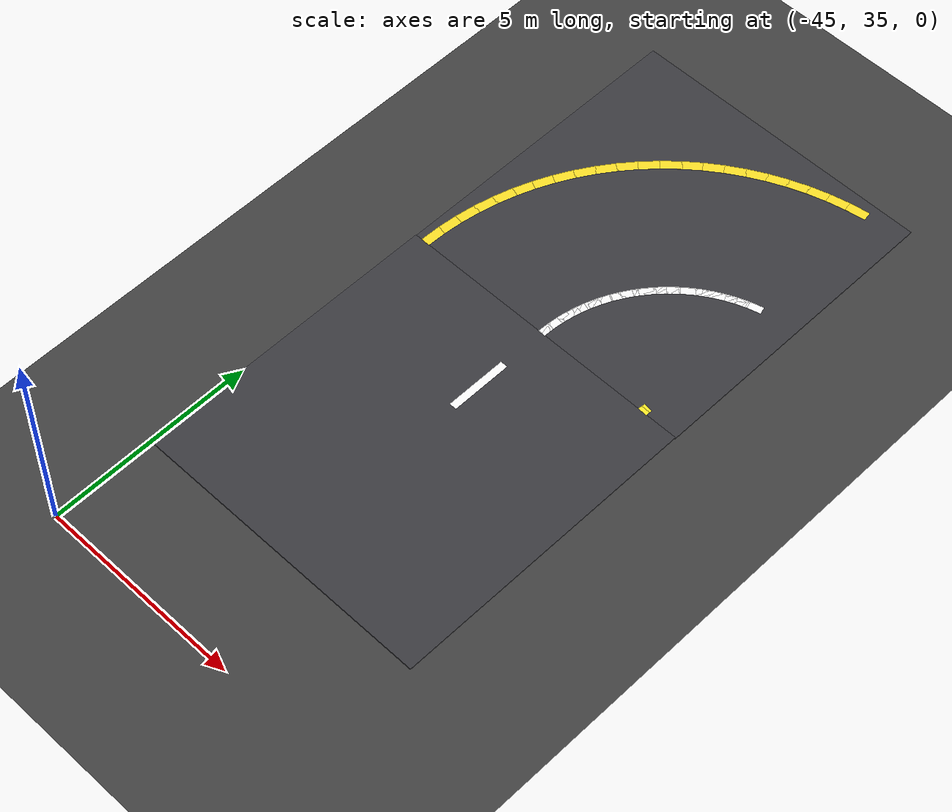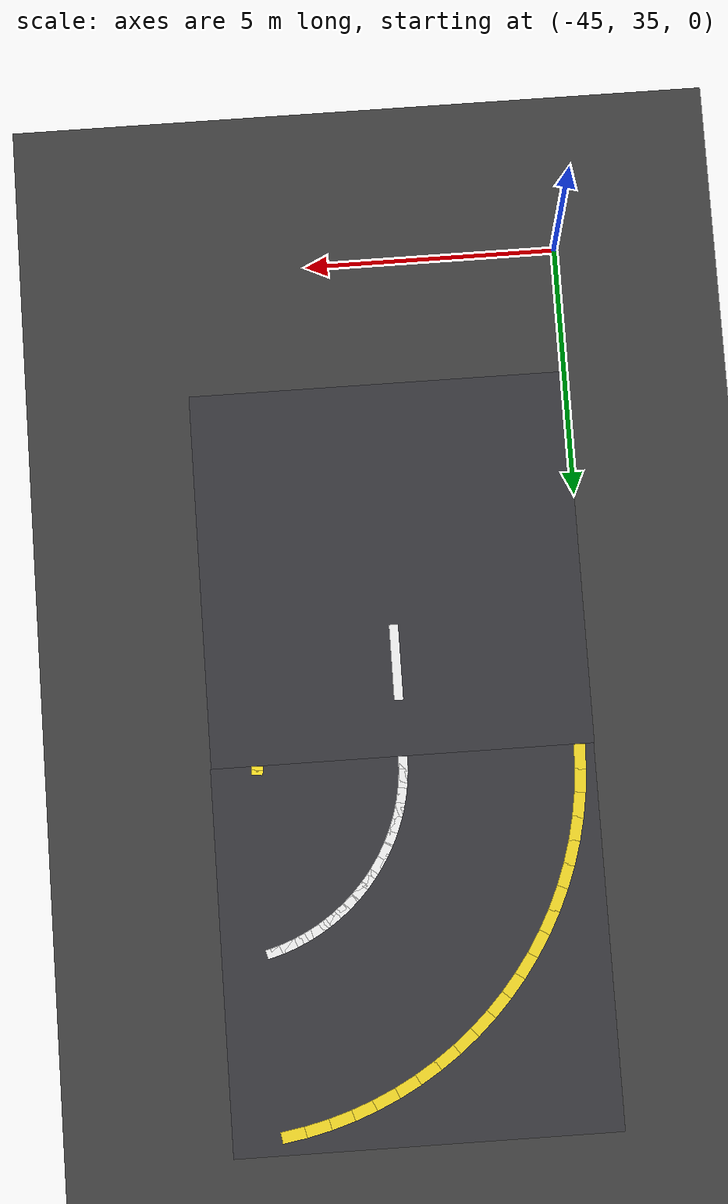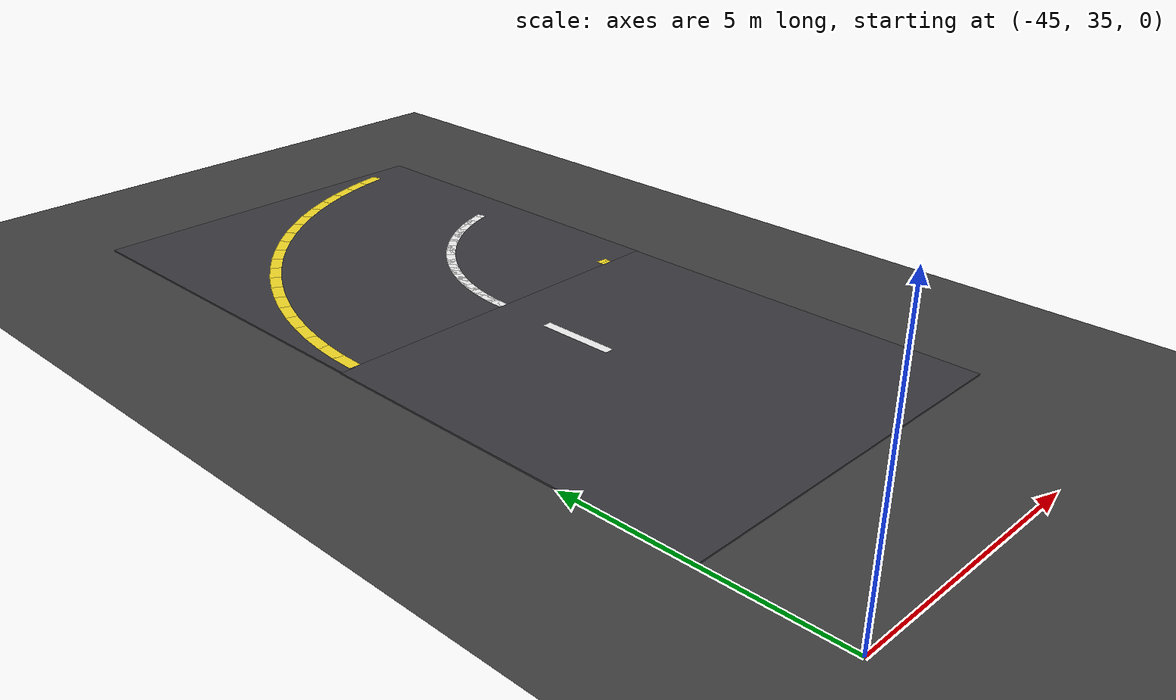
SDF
<sdf version="1.7">
 <world name="compact_city">
  <model name="ground_plane">
   <static>1</static>
   <pose>0 0 0.01 0 -0 0</pose>
   <link name="link">
    <collision name="collision">
     <geometry><plane><normal>0 0 1</normal><size>200 200</size></plane></geometry>
    </collision>
    <visual name="visual">
     <geometry><plane><normal>0 0 1</normal><size>200 200</size></plane></geometry>
     <material>
      <ambient>0.2 0.2 0.2 1</ambient>
      <diffuse>0.25 0.25 0.25 1</diffuse>
      <specular>0.1 0.1 0.1 1</specular>
     </material>
    </visual>
   </link>
  </model>
  <model name="road_tile_1">
   <static>1</static>
   <pose>-41.2353 48.726 0.015 0 -0 0</pose>
   <link name="link">
    <collision name="collision"><geometry><box><size>7.5 7.5 0.03</size></box></geometry></collision>
    <visual name="visual">
     <geometry><box><size>7.5 7.5 0.03</size></box></geometry>
     <material>
      <ambient>0.18 0.18 0.2 1</ambient>
      <diffuse>0.22 0.22 0.24 1</diffuse>
      <specular>0.1 0.1 0.1 1</specular>
     </material>
    </visual>
   </link>
  </model>
  <model name="road_tile_13">
   <static>1</static>
   <pose>-41.25 41.25 0.015 0 -0 1.5708</pose>
   <link name="link">
    <collision name="collision"><geometry><box><size>7.5 7.5 0.03</size></box></geometry></collision>
    <visual name="visual">
     <geometry><box><size>7.5 7.5 0.03</size></box></geometry>
     <material>
      <ambient>0.18 0.18 0.2 1</ambient>
      <diffuse>0.22 0.22 0.24 1</diffuse>
      <specular>0.1 0.1 0.1 1</specular>
     </material>
    </visual>
   </link>
  </model>
  <model name="ld_16">
   <static>1</static>
   <pose>-41.25 43.125 0.038 0 -0 1.5708</pose>
   <link name="link">
    <visual name="v">
     <geometry><box><size>1.5 0.18 0.002</size></box></geometry>
     <material><ambient>1 1 1 1</ambient><diffuse>0.95 0.95 0.95 1</diffuse></material>
    </visual>
   </link>
  </model>
  <model name="ac_358">
   <static>1</static>
   <pose>-38.5885 48.5886 0.038 0 0 -2.84708</pose>
   <link name="link">
    <visual name="v">
     <geometry><box><size>0.260117 0.18 0.002</size></box></geometry>
     <material><ambient>1 1 1 1</ambient><diffuse>0.95 0.95 0.95 1</diffuse></material>
    </visual>
   </link>
  </model>
  <model name="ac_359">
   <static>1</static>
   <pose>-38.8209 48.5097 0.038 0 0 -2.78159</pose>
   <link name="link">
    <visual name="v">
     <geometry><box><size>0.260117 0.18 0.002</size></box></geometry>
     <material><ambient>1 1 1 1</ambient><diffuse>0.95 0.95 0.95 1</diffuse></material>
    </visual>
   </link>
  </model>
  <model name="ac_360">
   <static>1</static>
   <pose>-39.0477 48.4158 0.038 0 0 -2.71618</pose>
   <link name="link">
    <visual name="v">
     <geometry><box><size>0.260117 0.18 0.002</size></box></geometry>
     <material><ambient>1 1 1 1</ambient><diffuse>0.95 0.95 0.95 1</diffuse></material>
    </visual>
   </link>
  </model>
  <model name="ac_361">
   <static>1</static>
   <pose>-39.2677 48.3072 0.038 0 0 -2.65069</pose>
   <link name="link">
    <visual name="v">
     <geometry><box><size>0.260117 0.18 0.002</size></box></geometry>
     <material><ambient>1 1 1 1</ambient><diffuse>0.95 0.95 0.95 1</diffuse></material>
    </visual>
   </link>
  </model>
  <model name="ac_362">
   <static>1</static>
   <pose>-39.4803 48.1845 0.038 0 0 -2.58528</pose>
   <link name="link">
    <visual name="v">
     <geometry><box><size>0.260117 0.18 0.002</size></box></geometry>
     <material><ambient>1 1 1 1</ambient><diffuse>0.95 0.95 0.95 1</diffuse></material>
    </visual>
   </link>
  </model>
  <model name="ac_363">
   <static>1</static>
   <pose>-39.6843 48.0481 0.038 0 0 -2.51979</pose>
   <link name="link">
    <visual name="v">
     <geometry><box><size>0.260117 0.18 0.002</size></box></geometry>
     <material><ambient>1 1 1 1</ambient><diffuse>0.95 0.95 0.95 1</diffuse></material>
    </visual>
   </link>
  </model>
  <model name="ac_364">
   <static>1</static>
   <pose>-39.879 47.8987 0.038 0 0 -2.45438</pose>
   <link name="link">
    <visual name="v">
     <geometry><box><size>0.260117 0.18 0.002</size></box></geometry>
     <material><ambient>1 1 1 1</ambient><diffuse>0.95 0.95 0.95 1</diffuse></material>
    </visual>
   </link>
  </model>
  <model name="ac_365">
   <static>1</static>
   <pose>-40.0635 47.7371 0.038 0 0 -2.38889</pose>
   <link name="link">
    <visual name="v">
     <geometry><box><size>0.260117 0.18 0.002</size></box></geometry>
     <material><ambient>1 1 1 1</ambient><diffuse>0.95 0.95 0.95 1</diffuse></material>
    </visual>
   </link>
  </model>
  <model name="ac_366">
   <static>1</static>
   <pose>-40.2371 47.5635 0.038 0 0 -2.32348</pose>
   <link name="link">
    <visual name="v">
     <geometry><box><size>0.260117 0.18 0.002</size></box></geometry>
     <material><ambient>1 1 1 1</ambient><diffuse>0.95 0.95 0.95 1</diffuse></material>
    </visual>
   </link>
  </model>
  <model name="ac_367">
   <static>1</static>
   <pose>-40.3987 47.379 0.038 0 0 -2.25799</pose>
   <link name="link">
    <visual name="v">
     <geometry><box><size>0.260117 0.18 0.002</size></box></geometry>
     <material><ambient>1 1 1 1</ambient><diffuse>0.95 0.95 0.95 1</diffuse></material>
    </visual>
   </link>
  </model>
  <model name="ac_368">
   <static>1</static>
   <pose>-40.5481 47.1843 0.038 0 0 -2.19258</pose>
   <link name="link">
    <visual name="v">
     <geometry><box><size>0.260117 0.18 0.002</size></box></geometry>
     <material><ambient>1 1 1 1</ambient><diffuse>0.95 0.95 0.95 1</diffuse></material>
    </visual>
   </link>
  </model>
  <model name="ac_369">
   <static>1</static>
   <pose>-40.6845 46.9803 0.038 0 0 -2.12709</pose>
   <link name="link">
    <visual name="v">
     <geometry><box><size>0.260117 0.18 0.002</size></box></geometry>
     <material><ambient>1 1 1 1</ambient><diffuse>0.95 0.95 0.95 1</diffuse></material>
    </visual>
   </link>
  </model>
  <model name="ac_370">
   <static>1</static>
   <pose>-40.8072 46.7677 0.038 0 0 -2.06169</pose>
   <link name="link">
    <visual name="v">
     <geometry><box><size>0.260117 0.18 0.002</size></box></geometry>
     <material><ambient>1 1 1 1</ambient><diffuse>0.95 0.95 0.95 1</diffuse></material>
    </visual>
   </link>
  </model>
  <model name="ac_371">
   <static>1</static>
   <pose>-40.9158 46.5477 0.038 0 0 -1.99619</pose>
   <link name="link">
    <visual name="v">
     <geometry><box><size>0.260117 0.18 0.002</size></box></geometry>
     <material><ambient>1 1 1 1</ambient><diffuse>0.95 0.95 0.95 1</diffuse></material>
    </visual>
   </link>
  </model>
  <model name="ac_372">
   <static>1</static>
   <pose>-41.0097 46.3209 0.038 0 0 -1.93078</pose>
   <link name="link">
    <visual name="v">
     <geometry><box><size>0.260117 0.18 0.002</size></box></geometry>
     <material><ambient>1 1 1 1</ambient><diffuse>0.95 0.95 0.95 1</diffuse></material>
    </visual>
   </link>
  </model>
  <model name="ac_373">
   <static>1</static>
   <pose>-41.0886 46.0885 0.038 0 0 -1.86529</pose>
   <link name="link">
    <visual name="v">
     <geometry><box><size>0.260117 0.18 0.002</size></box></geometry>
     <material><ambient>1 1 1 1</ambient><diffuse>0.95 0.95 0.95 1</diffuse></material>
    </visual>
   </link>
  </model>
  <model name="ac_374">
   <static>1</static>
   <pose>-41.1521 45.8516 0.038 0 0 -1.79988</pose>
   <link name="link">
    <visual name="v">
     <geometry><box><size>0.260117 0.18 0.002</size></box></geometry>
     <material><ambient>1 1 1 1</ambient><diffuse>0.95 0.95 0.95 1</diffuse></material>
    </visual>
   </link>
  </model>
  <model name="ac_375">
   <static>1</static>
   <pose>-41.1999 45.6108 0.038 0 0 -1.73439</pose>
   <link name="link">
    <visual name="v">
     <geometry><box><size>0.260117 0.18 0.002</size></box></geometry>
     <material><ambient>1 1 1 1</ambient><diffuse>0.95 0.95 0.95 1</diffuse></material>
    </visual>
   </link>
  </model>
  <model name="ac_376">
   <static>1</static>
   <pose>-41.232 45.3675 0.038 0 0 -1.66898</pose>
   <link name="link">
    <visual name="v">
     <geometry><box><size>0.260117 0.18 0.002</size></box></geometry>
     <material><ambient>1 1 1 1</ambient><diffuse>0.95 0.95 0.95 1</diffuse></material>
    </visual>
   </link>
  </model>
  <model name="ac_377">
   <static>1</static>
   <pose>-41.248 45.1227 0.038 0 0 -1.60349</pose>
   <link name="link">
    <visual name="v">
     <geometry><box><size>0.260117 0.18 0.002</size></box></geometry>
     <material><ambient>1 1 1 1</ambient><diffuse>0.95 0.95 0.95 1</diffuse></material>
    </visual>
   </link>
  </model>
  <model name="ao_404">
   <static>1</static>
   <pose>-38.6728 52.1039 0.038 0 0 -2.97798</pose>
   <link name="link">
    <visual name="v">
     <geometry><box><size>0.494712 0.225 0.002</size></box></geometry>
     <material><ambient>0.9 0.8 0.1 1</ambient><diffuse>0.95 0.85 0.15 1</diffuse></material>
    </visual>
   </link>
  </model>
  <model name="ao_405">
   <static>1</static>
   <pose>-39.135 52.0119 0.038 0 0 -2.91249</pose>
   <link name="link">
    <visual name="v">
     <geometry><box><size>0.494712 0.225 0.002</size></box></geometry>
     <material><ambient>0.9 0.8 0.1 1</ambient><diffuse>0.95 0.85 0.15 1</diffuse></material>
    </visual>
   </link>
  </model>
  <model name="ao_406">
   <static>1</static>
   <pose>-39.5901 51.8899 0.038 0 0 -2.84708</pose>
   <link name="link">
    <visual name="v">
     <geometry><box><size>0.494712 0.225 0.002</size></box></geometry>
     <material><ambient>0.9 0.8 0.1 1</ambient><diffuse>0.95 0.85 0.15 1</diffuse></material>
    </visual>
   </link>
  </model>
  <model name="ao_407">
   <static>1</static>
   <pose>-40.0362 51.7385 0.038 0 0 -2.78159</pose>
   <link name="link">
    <visual name="v">
     <geometry><box><size>0.494712 0.225 0.002</size></box></geometry>
     <material><ambient>0.9 0.8 0.1 1</ambient><diffuse>0.95 0.85 0.15 1</diffuse></material>
    </visual>
   </link>
  </model>
  <model name="ao_408">
   <static>1</static>
   <pose>-40.4715 51.5581 0.038 0 0 -2.71618</pose>
   <link name="link">
    <visual name="v">
     <geometry><box><size>0.494712 0.225 0.002</size></box></geometry>
     <material><ambient>0.9 0.8 0.1 1</ambient><diffuse>0.95 0.85 0.15 1</diffuse></material>
    </visual>
   </link>
  </model>
  <model name="ao_409">
   <static>1</static>
   <pose>-40.8941 51.3498 0.038 0 0 -2.65069</pose>
   <link name="link">
    <visual name="v">
     <geometry><box><size>0.494712 0.225 0.002</size></box></geometry>
     <material><ambient>0.9 0.8 0.1 1</ambient><diffuse>0.95 0.85 0.15 1</diffuse></material>
    </visual>
   </link>
  </model>
  <model name="ao_410">
   <static>1</static>
   <pose>-41.3021 51.1143 0.038 0 0 -2.58528</pose>
   <link name="link">
    <visual name="v">
     <geometry><box><size>0.494712 0.225 0.002</size></box></geometry>
     <material><ambient>0.9 0.8 0.1 1</ambient><diffuse>0.95 0.85 0.15 1</diffuse></material>
    </visual>
   </link>
  </model>
  <model name="ao_411">
   <static>1</static>
   <pose>-41.6938 50.8526 0.038 0 0 -2.51979</pose>
   <link name="link">
    <visual name="v">
     <geometry><box><size>0.494712 0.225 0.002</size></box></geometry>
     <material><ambient>0.9 0.8 0.1 1</ambient><diffuse>0.95 0.85 0.15 1</diffuse></material>
    </visual>
   </link>
  </model>
  <model name="ao_412">
   <static>1</static>
   <pose>-42.0677 50.5658 0.038 0 0 -2.45438</pose>
   <link name="link">
    <visual name="v">
     <geometry><box><size>0.494712 0.225 0.002</size></box></geometry>
     <material><ambient>0.9 0.8 0.1 1</ambient><diffuse>0.95 0.85 0.15 1</diffuse></material>
    </visual>
   </link>
  </model>
  <model name="ao_413">
   <static>1</static>
   <pose>-42.4218 50.255 0.038 0 0 -2.38889</pose>
   <link name="link">
    <visual name="v">
     <geometry><box><size>0.494712 0.225 0.002</size></box></geometry>
     <material><ambient>0.9 0.8 0.1 1</ambient><diffuse>0.95 0.85 0.15 1</diffuse></material>
    </visual>
   </link>
  </model>
  <model name="ao_414">
   <static>1</static>
   <pose>-42.755 49.9218 0.038 0 0 -2.32348</pose>
   <link name="link">
    <visual name="v">
     <geometry><box><size>0.494712 0.225 0.002</size></box></geometry>
     <material><ambient>0.9 0.8 0.1 1</ambient><diffuse>0.95 0.85 0.15 1</diffuse></material>
    </visual>
   </link>
  </model>
  <model name="ao_415">
   <static>1</static>
   <pose>-43.0658 49.5677 0.038 0 0 -2.25799</pose>
   <link name="link">
    <visual name="v">
     <geometry><box><size>0.494712 0.225 0.002</size></box></geometry>
     <material><ambient>0.9 0.8 0.1 1</ambient><diffuse>0.95 0.85 0.15 1</diffuse></material>
    </visual>
   </link>
  </model>
  <model name="ao_416">
   <static>1</static>
   <pose>-43.3526 49.1938 0.038 0 0 -2.19258</pose>
   <link name="link">
    <visual name="v">
     <geometry><box><size>0.494712 0.225 0.002</size></box></geometry>
     <material><ambient>0.9 0.8 0.1 1</ambient><diffuse>0.95 0.85 0.15 1</diffuse></material>
    </visual>
   </link>
  </model>
  <model name="ao_417">
   <static>1</static>
   <pose>-43.6143 48.8021 0.038 0 0 -2.12709</pose>
   <link name="link">
    <visual name="v">
     <geometry><box><size>0.494712 0.225 0.002</size></box></geometry>
     <material><ambient>0.9 0.8 0.1 1</ambient><diffuse>0.95 0.85 0.15 1</diffuse></material>
    </visual>
   </link>
  </model>
  <model name="ao_418">
   <static>1</static>
   <pose>-43.8498 48.3941 0.038 0 0 -2.06169</pose>
   <link name="link">
    <visual name="v">
     <geometry><box><size>0.494712 0.225 0.002</size></box></geometry>
     <material><ambient>0.9 0.8 0.1 1</ambient><diffuse>0.95 0.85 0.15 1</diffuse></material>
    </visual>
   </link>
  </model>
  <model name="ao_419">
   <static>1</static>
   <pose>-44.0581 47.9715 0.038 0 0 -1.99619</pose>
   <link name="link">
    <visual name="v">
     <geometry><box><size>0.494712 0.225 0.002</size></box></geometry>
     <material><ambient>0.9 0.8 0.1 1</ambient><diffuse>0.95 0.85 0.15 1</diffuse></material>
    </visual>
   </link>
  </model>
  <model name="ao_420">
   <static>1</static>
   <pose>-44.2385 47.5362 0.038 0 0 -1.93078</pose>
   <link name="link">
    <visual name="v">
     <geometry><box><size>0.494712 0.225 0.002</size></box></geometry>
     <material><ambient>0.9 0.8 0.1 1</ambient><diffuse>0.95 0.85 0.15 1</diffuse></material>
    </visual>
   </link>
  </model>
  <model name="ao_421">
   <static>1</static>
   <pose>-44.3899 47.0901 0.038 0 0 -1.86529</pose>
   <link name="link">
    <visual name="v">
     <geometry><box><size>0.494712 0.225 0.002</size></box></geometry>
     <material><ambient>0.9 0.8 0.1 1</ambient><diffuse>0.95 0.85 0.15 1</diffuse></material>
    </visual>
   </link>
  </model>
  <model name="ao_422">
   <static>1</static>
   <pose>-44.5119 46.635 0.038 0 0 -1.79988</pose>
   <link name="link">
    <visual name="v">
     <geometry><box><size>0.494712 0.225 0.002</size></box></geometry>
     <material><ambient>0.9 0.8 0.1 1</ambient><diffuse>0.95 0.85 0.15 1</diffuse></material>
    </visual>
   </link>
  </model>
  <model name="ao_423">
   <static>1</static>
   <pose>-44.6039 46.1728 0.038 0 0 -1.73439</pose>
   <link name="link">
    <visual name="v">
     <geometry><box><size>0.494712 0.225 0.002</size></box></geometry>
     <material><ambient>0.9 0.8 0.1 1</ambient><diffuse>0.95 0.85 0.15 1</diffuse></material>
    </visual>
   </link>
  </model>
  <model name="ao_424">
   <static>1</static>
   <pose>-44.6653 45.7058 0.038 0 0 -1.66898</pose>
   <link name="link">
    <visual name="v">
     <geometry><box><size>0.494712 0.225 0.002</size></box></geometry>
     <material><ambient>0.9 0.8 0.1 1</ambient><diffuse>0.95 0.85 0.15 1</diffuse></material>
    </visual>
   </link>
  </model>
  <model name="ao_425">
   <static>1</static>
   <pose>-44.6961 45.2356 0.038 0 0 -1.60349</pose>
   <link name="link">
    <visual name="v">
     <geometry><box><size>0.494712 0.225 0.002</size></box></geometry>
     <material><ambient>0.9 0.8 0.1 1</ambient><diffuse>0.95 0.85 0.15 1</diffuse></material>
    </visual>
   </link>
  </model>
  <model name="arc_c_200">
   <static>1</static>
   <pose>-38.5172 48.6065 0.038 0 0 -2.8667</pose>
   <link name="link">
    <visual name="visual">
     <geometry><box><size>0.324449 0.18 0.002</size></box></geometry>
     <material><ambient>1 1 1 1</ambient><diffuse>0.95 0.95 0.95 1</diffuse></material>
    </visual>
   </link>
  </model>
  <model name="arc_c_201">
   <static>1</static>
   <pose>-38.7969 48.5155 0.038 0 0 -2.7882</pose>
   <link name="link">
    <visual name="visual">
     <geometry><box><size>0.324449 0.18 0.002</size></box></geometry>
     <material><ambient>1 1 1 1</ambient><diffuse>0.95 0.95 0.95 1</diffuse></material>
    </visual>
   </link>
  </model>
  <model name="arc_c_202">
   <static>1</static>
   <pose>-39.0687 48.4029 0.038 0 0 -2.7096</pose>
   <link name="link">
    <visual name="visual">
     <geometry><box><size>0.324449 0.18 0.002</size></box></geometry>
     <material><ambient>1 1 1 1</ambient><diffuse>0.95 0.95 0.95 1</diffuse></material>
    </visual>
   </link>
  </model>
  <model name="arc_c_203">
   <static>1</static>
   <pose>-39.3309 48.2694 0.038 0 0 -2.6311</pose>
   <link name="link">
    <visual name="visual">
     <geometry><box><size>0.324449 0.18 0.002</size></box></geometry>
     <material><ambient>1 1 1 1</ambient><diffuse>0.95 0.95 0.95 1</diffuse></material>
    </visual>
   </link>
  </model>
  <model name="arc_c_204">
   <static>1</static>
   <pose>-39.5819 48.1157 0.038 0 0 -2.5525</pose>
   <link name="link">
    <visual name="visual">
     <geometry><box><size>0.324449 0.18 0.002</size></box></geometry>
     <material><ambient>1 1 1 1</ambient><diffuse>0.95 0.95 0.95 1</diffuse></material>
    </visual>
   </link>
  </model>
  <model name="arc_c_205">
   <static>1</static>
   <pose>-39.8197 47.9427 0.038 0 0 -2.474</pose>
   <link name="link">
    <visual name="visual">
     <geometry><box><size>0.324449 0.18 0.002</size></box></geometry>
     <material><ambient>1 1 1 1</ambient><diffuse>0.95 0.95 0.95 1</diffuse></material>
    </visual>
   </link>
  </model>
  <model name="arc_c_206">
   <static>1</static>
   <pose>-40.0436 47.7516 0.038 0 0 -2.3955</pose>
   <link name="link">
    <visual name="visual">
     <geometry><box><size>0.324449 0.18 0.002</size></box></geometry>
     <material><ambient>1 1 1 1</ambient><diffuse>0.95 0.95 0.95 1</diffuse></material>
    </visual>
   </link>
  </model>
  <model name="arc_c_207">
   <static>1</static>
   <pose>-40.2516 47.5436 0.038 0 0 -2.3169</pose>
   <link name="link">
    <visual name="visual">
     <geometry><box><size>0.324449 0.18 0.002</size></box></geometry>
     <material><ambient>1 1 1 1</ambient><diffuse>0.95 0.95 0.95 1</diffuse></material>
    </visual>
   </link>
  </model>
  <model name="arc_c_208">
   <static>1</static>
   <pose>-40.4427 47.3197 0.038 0 0 -2.2384</pose>
   <link name="link">
    <visual name="visual">
     <geometry><box><size>0.324449 0.18 0.002</size></box></geometry>
     <material><ambient>1 1 1 1</ambient><diffuse>0.95 0.95 0.95 1</diffuse></material>
    </visual>
   </link>
  </model>
  <model name="arc_c_209">
   <static>1</static>
   <pose>-40.6157 47.0819 0.038 0 0 -2.1598</pose>
   <link name="link">
    <visual name="visual">
     <geometry><box><size>0.324449 0.18 0.002</size></box></geometry>
     <material><ambient>1 1 1 1</ambient><diffuse>0.95 0.95 0.95 1</diffuse></material>
    </visual>
   </link>
  </model>
  <model name="arc_c_210">
   <static>1</static>
   <pose>-40.7694 46.8309 0.038 0 0 -2.0813</pose>
   <link name="link">
    <visual name="visual">
     <geometry><box><size>0.324449 0.18 0.002</size></box></geometry>
     <material><ambient>1 1 1 1</ambient><diffuse>0.95 0.95 0.95 1</diffuse></material>
    </visual>
   </link>
  </model>
  <model name="arc_c_211">
   <static>1</static>
   <pose>-40.9029 46.5687 0.038 0 0 -2.0028</pose>
   <link name="link">
    <visual name="visual">
     <geometry><box><size>0.324449 0.18 0.002</size></box></geometry>
     <material><ambient>1 1 1 1</ambient><diffuse>0.95 0.95 0.95 1</diffuse></material>
    </visual>
   </link>
  </model>
  <model name="arc_c_212">
   <static>1</static>
   <pose>-41.0155 46.2969 0.038 0 0 -1.9242</pose>
   <link name="link">
    <visual name="visual">
     <geometry><box><size>0.324449 0.18 0.002</size></box></geometry>
     <material><ambient>1 1 1 1</ambient><diffuse>0.95 0.95 0.95 1</diffuse></material>
    </visual>
   </link>
  </model>
  <model name="arc_c_213">
   <static>1</static>
   <pose>-41.1065 46.0172 0.038 0 0 -1.8457</pose>
   <link name="link">
    <visual name="visual">
     <geometry><box><size>0.324449 0.18 0.002</size></box></geometry>
     <material><ambient>1 1 1 1</ambient><diffuse>0.95 0.95 0.95 1</diffuse></material>
    </visual>
   </link>
  </model>
  <model name="arc_c_214">
   <static>1</static>
   <pose>-41.1752 45.7309 0.038 0 0 -1.7671</pose>
   <link name="link">
    <visual name="visual">
     <geometry><box><size>0.324449 0.18 0.002</size></box></geometry>
     <material><ambient>1 1 1 1</ambient><diffuse>0.95 0.95 0.95 1</diffuse></material>
    </visual>
   </link>
  </model>
  <model name="arc_c_215">
   <static>1</static>
   <pose>-41.2212 45.4404 0.038 0 0 -1.6886</pose>
   <link name="link">
    <visual name="visual">
     <geometry><box><size>0.324449 0.18 0.002</size></box></geometry>
     <material><ambient>1 1 1 1</ambient><diffuse>0.95 0.95 0.95 1</diffuse></material>
    </visual>
   </link>
  </model>
  <model name="arc_c_216">
   <static>1</static>
   <pose>-41.2441 45.1472 0.038 0 0 -1.6101</pose>
   <link name="link">
    <visual name="visual">
     <geometry><box><size>0.324449 0.18 0.002</size></box></geometry>
     <material><ambient>1 1 1 1</ambient><diffuse>0.95 0.95 0.95 1</diffuse></material>
    </visual>
   </link>
  </model>
  <model name="arc_in_235">
   <static>1</static>
   <pose>-38.3931 45.1058 0.038 0 0 -1.6886</pose>
   <link name="link">
    <visual name="visual">
     <geometry><box><size>0.100668 0.225 0.002</size></box></geometry>
     <material><ambient>0.95 0.85 0.1 1</ambient><diffuse>1 0.9 0.15 1</diffuse></material>
    </visual>
   </link>
  </model>
  <model name="arc_in_236">
   <static>1</static>
   <pose>-38.3987 45.0352 0.038 0 0 -1.6101</pose>
   <link name="link">
    <visual name="visual">
     <geometry><box><size>0.100668 0.225 0.002</size></box></geometry>
     <material><ambient>0.95 0.85 0.1 1</ambient><diffuse>1 0.9 0.15 1</diffuse></material>
    </visual>
   </link>
  </model>
 </world>
</sdf>
